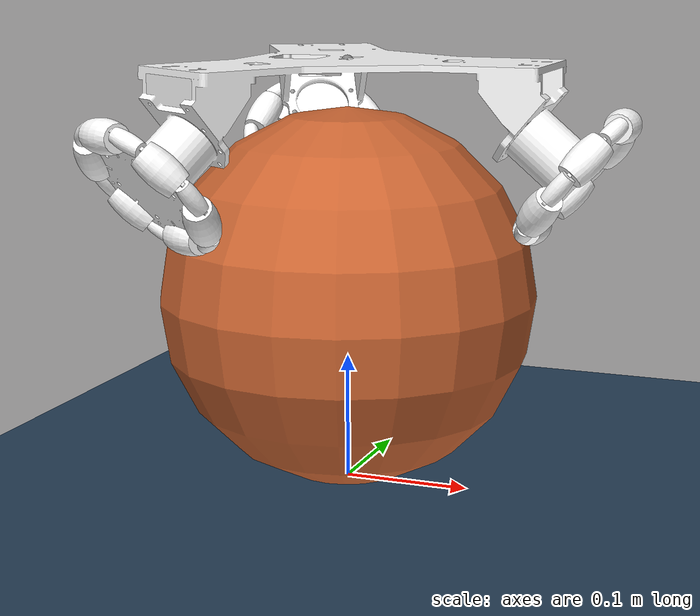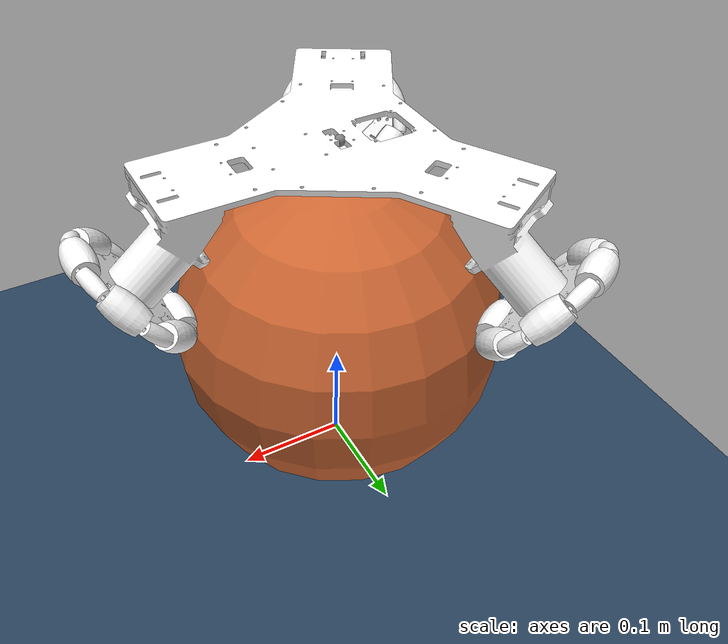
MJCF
<mujoco model="mjmodel scene">

  <!--引用机器人模型-->
  <include file="omni_ballbot.xml"/>
  <!--设置场景统计信息显示范围 中心位于(0,0,0.1)，半径 0.8 米-->
  <statistic center="0 0 0.1" extent="0.8"/>

  <!--视觉全局设置-->
  <visual>
    <headlight diffuse="0.6 0.6 0.6" ambient="0.3 0.3 0.3" specular="0 0 0"/>
    <rgba haze="0.15 0.25 0.35 1"/>
    <global azimuth="-130" elevation="-20"/>
  </visual>
  <!--天空盒纹理 地面纹理-->
  <asset>
    <texture type="skybox" builtin="gradient" rgb1="0.3 0.5 0.7" rgb2="0 0 0" width="512" height="3072"/>
    <texture type="2d" name="groundplane" builtin="checker" mark="edge" rgb1="0.2 0.3 0.4" rgb2="0.1 0.2 0.3"
      markrgb="0.8 0.8 0.8" width="300" height="300"/>
    <material name="groundplane" texture="groundplane" texuniform="true" texrepeat="5 5" reflectance="0.2"/>
  </asset>
  <!--地面平面和球-->
  <worldbody>
    <light pos="0 0 1.5" dir="0 0 -1" directional="true"/>
    <!--地面摩擦力在这-->
    <geom name="floor" size="0 0 0.05" type="plane" material="groundplane" friction="1.5 0.005 0.0001"/>
    <body name="balance_ball" pos="0 0 0.15">
      <freejoint name="ball_joint"/>
      <geom name="ball_geom" type="sphere" size="0.15" mass="1.2" rgba="0.8 0.4 0.2 1"
            friction="1.2 0.005 0.0001"
            solref="0.015 1" solimp="0.9 0.95 0.001 0.5 2"/>
    </body>
  </worldbody>
</mujoco>

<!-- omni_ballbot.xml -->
<mujoco model="omni_ballbot">
  <compiler angle="radian" meshdir="../meshes/"/>
  <!--cone决定了打滑时摩擦力的极限边界为椭圆形  impratio为接触阻抗比-->
  <option cone="elliptic" impratio="10"/>
<!--资产meshes-->
  <asset>
    <mesh name="base_link" file="base_link.STL"/>
    <mesh name="wheel_base" file="wheel_base.STL"/>
    <mesh name="wheel_link_A" file="wheel_link_A.STL"/>
    <mesh name="wheel_link_B" file="wheel_link_B.STL"/>
  </asset>
<!--执行器actuator-->
  <actuator>
    <motor name="wheel1" joint="wheel1_joint" ctrlrange="-2.5 2.5" gear="1"/>
    <motor name="wheel2" joint="wheel2_joint" ctrlrange="-2.5 2.5" gear="1"/>
    <motor name="wheel3" joint="wheel3_joint" ctrlrange="-2.5 2.5" gear="1"/>
  </actuator>
<!--辊子组别-->
  <!-- 物体A 和 物体B 发生碰撞的条件是：(注：& 是二进制按位与运算)
      A_contype & B_conaffinity > 0 就碰撞 或者 B_contype & A_conaffinity > 0
  -->
  <!-- 默认地面是 contype="1", conaffinity="1" -->
  <default>
    <default class="omni_roller">
      <!--type="mesh": 告诉引擎别用简单的球或圆柱，去读取你的 STL 文件算凸包，还原最真实的鼓形外轮廓-->
      <!--接触维度:3维算垂直弹力 + 沿面滑动的摩擦力；-->
      <!-- 0.8 (滑动摩擦): 沿着接触面切线的滑动阻力。0.8 是典型的软橡胶对金属/硬塑料的摩擦系数，提供极强的抓地力，让你的轮子能驱动球。
           0.05 (扭转摩擦): 绕着接触法线原地扭转的阻力。设小一点，是因为小辊子在球面上往往伴随着微小的原地自转滑动，太大容易卡死。
           0.0001 (滚动摩擦): 抵抗向前滚动的力。极其微小，模拟轴承的极致丝滑。 -->
      <!-- margin="0.001" (碰撞裕度): * 网格模型表面会有微小的“棱角”。这个参数会在你的 3D 模型外面“包”一层 1 毫米厚的隐形软垫。
        它能让引擎提前介入计算，把网格相撞时的尖锐脉冲力“柔化”，控制器读取到的力矩曲线会非常平滑。 -->
      <geom type="mesh" contype="2" conaffinity="1" condim="3" friction="0.8 0.05 0.0001" margin="0.001" solref="0.01 1" solimp="0.9 0.95 0.001 0.5 2"/>

      <!-- type="hinge": 所有的辊子只能绕自己的那根轴转。
           damping="0.001" (粘性阻尼): * 含义： 阻力与转速成正比（转得越快阻力越大）。模拟轴承里润滑油的粘滞力
           frictionloss="0.001" (干摩擦/静摩擦损失):启动阻力。你必须施加大于这个值的扭矩，辊子才会开始转。模拟金属部件之间的静摩擦。 -->
      <joint type="hinge" damping="0.001" frictionloss="0.001" armature="0.0001"/>
    </default>

    <default class="visual_geom">
      <geom type="mesh" contype="0" conaffinity="0" group="1" density="0"/>
    </default>
  </default>

  <!-- ===== 传感器 ===== -->
  <sensor>
    <!-- 姿态四元数 (IMU) -->
    <framequat name="base_orientation" objtype="site" objname="imu_site"/>
    <!-- 角速度 (陀螺仪) -->
    <frameangvel name="base_angvel" objtype="site" objname="imu_site"/>
    <!-- 线加速度 (加速度计) -->
    <accelerometer name="base_acc" site="imu_site"/>
    <!-- 线速度 -->
    <framelinvel name="base_linvel" objtype="site" objname="imu_site"/>
  </sensor>
  <worldbody>
    <!--让机器人活动-->
    <body name="base_link" pos="0 0 0.335">
    <freejoint name="base_joint"/>
    <inertial pos="0 0 0" mass="3.0" diaginertia="0.05 0.05 0.08"/>
    <geom type="mesh" contype="0" conaffinity="0" group="1" density="0" rgba="1 1 1 1" mesh="base_link"/>
    <geom type="cylinder" size="0.13 0.01" rgba="1 1 1 0" solref="0.04 1" solimp="0.9 0.95 0.001 0.5 2"/>
    <!-- IMU 传感器安装点 (base_link 质心) -->
    <site name="imu_site" pos="0 0 0"/>
    <!--轮子1-->
    <body name="wheel1_base" pos="0.18364 0 -0.081395" quat="0.939693 0 0.342019 0">
      <inertial pos="0 0 0" mass="1.0" diaginertia="1.0185e-05 5.1179e-06 5.1179e-06"/>
      <joint name="wheel1_joint" pos="0 0 0" axis="1 0 0"/>
        <geom type="mesh" mesh="wheel_base" rgba="1 1 1 1" class="visual_geom"/>
      <!--辊子-->
      <body name="wheel1_link_A1" pos="0 0 0.052" quat="0.707105 0 -0.707108 0">
        <inertial pos="0 0 0" quat="0.707107 0.707107 0 0" mass="0.04" diaginertia="2.0983e-06 2.0983e-06 1.2396e-06"/>
        <joint name="wheel1_joint_A1" pos="0 0 0" axis="0 1 0" class="omni_roller"/>
        <geom mesh="wheel_link_A" rgba="1 1 1 1" class="visual_geom"/>
        <geom mesh="wheel_link_A" class="omni_roller" rgba="1 1 1 0"/>
      </body>
      <!--辊子-->
      <body name="wheel1_link_A2" pos="0 -0.045033 0.026" quat="0.612371 0.353553 -0.612374 -0.353553">
        <inertial pos="0 0 0" quat="0.707107 0.707107 0 0" mass="0.04" diaginertia="2.09835e-06 2.09835e-06 1.23958e-06"/>
        <joint name="wheel1_joint_A2" pos="0 0 0" axis="0 1 0" class="omni_roller"/>
        <geom mesh="wheel_link_A" rgba="1 1 1 1" class="visual_geom"/>
        <geom mesh="wheel_link_A" class="omni_roller" rgba="1 1 1 0"/>
      </body>
      <!--辊子-->
      <body name="wheel1_link_A3" pos="0 -0.045033 -0.026" quat="0.353551 0.612373 -0.353555 -0.612373">
        <inertial pos="0 0 0" quat="0.707107 0.707107 0 0" mass="0.04" diaginertia="2.0983e-06 2.0983e-06 1.2396e-06"/>
        <joint name="wheel1_joint_A3" pos="0 0 0" axis="0 1 0" class="omni_roller"/>
        <geom mesh="wheel_link_A" rgba="1 1 1 1" class="visual_geom"/>
        <geom mesh="wheel_link_A" class="omni_roller" rgba="1 1 1 0"/>
      </body>
      <!--辊子-->
      <body name="wheel1_link_A4" pos="0 0 -0.052" quat="-2.59734e-06 0.707105 -2.59735e-06 -0.707108">
        <inertial pos="0 0 0" quat="0.707107 0.707107 0 0" mass="0.04" diaginertia="2.09835e-06 2.09835e-06 1.23958e-06"/>
        <joint name="wheel1_joint_A4" pos="0 0 0" axis="0 1 0" class="omni_roller"/>
        <geom mesh="wheel_link_A" rgba="1 1 1 1" class="visual_geom"/>
        <geom mesh="wheel_link_A" class="omni_roller" rgba="1 1 1 0"/>
      </body>
      <!--辊子-->
      <body name="wheel1_link_A5" pos="0 0.045033 -0.026" quat="0.353551 -0.612373 -0.353555 0.612373">
        <inertial pos="0 0 0" quat="0.707107 0.707107 0 0" mass="0.04" diaginertia="2.0983e-06 2.0983e-06 1.2396e-06"/>
        <joint name="wheel1_joint_A5" pos="0 0 0" axis="0 1 0" class="omni_roller"/>
        <geom mesh="wheel_link_A" rgba="1 1 1 1" class="visual_geom"/>
        <geom mesh="wheel_link_A" class="omni_roller" rgba="1 1 1 0"/>
      </body>
      <!--辊子-->
      <body name="wheel1_link_A6" pos="0 0.045033 0.026" quat="0.612371 -0.353553 -0.612374 0.353553">
        <inertial pos="0 0 0" quat="0.707107 0.707107 0 0" mass="0.04" diaginertia="2.0983e-06 2.0983e-06 1.2396e-06"/>
        <joint name="wheel1_joint_A6" pos="0 0 0" axis="0 1 0" class="omni_roller"/>
        <geom mesh="wheel_link_A" rgba="1 1 1 1" class="visual_geom"/>
        <geom mesh="wheel_link_A" class="omni_roller" rgba="1 1 1 0"/>
      </body>
      <!--辊子-->
      <body name="wheel1_link_B1" pos="0 -0.029 0.050229" quat="0.683012 0.183012 -0.683014 -0.183012">
        <inertial pos="0 -1.1743e-06 0" quat="0.707107 0.707107 0 0" mass="0.02" diaginertia="1.9241e-07 1.9241e-07 7.4977e-08"/>
        <joint name="wheel1_joint_B1" pos="0 0 0" axis="0 1 0" class="omni_roller"/>
        <geom mesh="wheel_link_B" rgba="1 1 1 1" class="visual_geom"/>
        <geom mesh="wheel_link_B" class="omni_roller" rgba="1 1 1 0"/>
      </body>
      <body name="wheel1_link_B2" pos="0 -0.058 0" quat="0.499998 0.5 -0.500002 -0.5">
        <inertial pos="0 -1.17428e-06 0" quat="0.707107 0.707107 0 0" mass="0.02" diaginertia="1.92408e-07 1.92408e-07 7.49769e-08"/>
        <joint name="wheel1_joint_B2" pos="0 0 0" axis="0 1 0" class="omni_roller"/>
        <geom mesh="wheel_link_B" rgba="1 1 1 1" class="visual_geom"/>
        <geom mesh="wheel_link_B" class="omni_roller" rgba="1 1 1 0"/>
      </body>
      <body name="wheel1_link_B3" pos="0 -0.029 -0.0502295" quat="0.183013 0.683013 -0.183013 -0.683013">
        <inertial pos="0 -1.1743e-06 0" quat="0.707107 0.707107 0 0" mass="0.02" diaginertia="1.9241e-07 1.9241e-07 7.4977e-08"/>
        <joint name="wheel1_joint_B3" pos="0 0 0" axis="0 1 0" class="omni_roller"/>
        <geom mesh="wheel_link_B" rgba="1 1 1 1" class="visual_geom"/>
        <geom mesh="wheel_link_B" class="omni_roller" rgba="1 1 1 0"/>
      </body>
      <body name="wheel1_link_B4" pos="0 0.029 -0.050229" quat="0.183009 -0.683013 -0.183014 0.683013">
        <inertial pos="0 -1.17428e-06 0" quat="0.707107 0.707107 0 0" mass="0.02" diaginertia="1.92408e-07 1.92408e-07 7.49769e-08"/>
        <joint name="wheel1_joint_B4" pos="0 0 0" axis="0 1 0" class="omni_roller"/>
        <geom mesh="wheel_link_B" rgba="1 1 1 1" class="visual_geom"/>
        <geom mesh="wheel_link_B" class="omni_roller" rgba="1 1 1 0"/>
      </body>
      <body name="wheel1_link_B5" pos="0 0.058 0" quat="0.499998 -0.5 -0.500002 0.5">
        <inertial pos="0 -1.17428e-06 0" quat="0.707107 0.707107 0 0" mass="0.02" diaginertia="1.92408e-07 1.92408e-07 7.49769e-08"/>
        <joint name="wheel1_joint_B5" pos="0 0 0" axis="0 1 0" class="omni_roller"/>
        <geom mesh="wheel_link_B" rgba="1 1 1 1" class="visual_geom"/>
        <geom mesh="wheel_link_B" class="omni_roller" rgba="1 1 1 0"/>
      </body>
      <body name="wheel1_link_B6" pos="0 0.029 0.050229" quat="0.683012 -0.183012 -0.683014 0.183012">
        <inertial pos="0 -1.1743e-06 0" quat="0.707107 0.707107 0 0" mass="0.02" diaginertia="1.9241e-07 1.9241e-07 7.4977e-08"/>
        <joint name="wheel1_joint_B6" pos="0 0 0" axis="0 1 0" class="omni_roller"/>
        <geom mesh="wheel_link_B" rgba="1 1 1 1" class="visual_geom"/>
        <geom mesh="wheel_link_B" class="omni_roller" rgba="1 1 1 0"/>
      </body>
    </body>

    <body name="wheel2_base" pos="-0.091819 0.15904 -0.081395" quat="0.469844 -0.296198 0.171009 0.813799">
      <inertial pos="0 0 0" mass="1.0" diaginertia="1.0185e-05 5.1179e-06 5.1179e-06"/>
      <joint name="wheel2_joint" pos="0 0 0" axis="1 0 0"/>
      <geom type="mesh" mesh="wheel_base" rgba="1 1 1 1" class="visual_geom"/>
      <body name="wheel2_link_A1" pos="0 0 0.052" quat="0.707105 0 -0.707108 0">
        <inertial pos="0 0 0" quat="0.707107 0.707107 0 0" mass="0.04" diaginertia="2.0983e-06 2.0983e-06 1.2396e-06"/>
        <joint name="wheel2_joint_A1" pos="0 0 0" axis="0 1 0" class="omni_roller"/>
        <geom mesh="wheel_link_A" rgba="1 1 1 1" class="visual_geom"/>
        <geom mesh="wheel_link_A" class="omni_roller" rgba="1 1 1 0"/>
      </body>
      <body name="wheel2_link_A2" pos="0 -0.045033 0.026" quat="0.612371 0.353553 -0.612374 -0.353553">
        <inertial pos="0 0 0" quat="0.707107 0.707107 0 0" mass="0.04" diaginertia="2.09835e-06 2.09835e-06 1.23958e-06"/>
        <joint name="wheel2_joint_A2" pos="0 0 0" axis="0 1 0" class="omni_roller"/>
        <geom mesh="wheel_link_A" rgba="1 1 1 1" class="visual_geom"/>
        <geom mesh="wheel_link_A" class="omni_roller" rgba="1 1 1 0"/>
      </body>
      <body name="wheel2_link_A3" pos="0 -0.045033 -0.026" quat="0.353551 0.612373 -0.353555 -0.612373">
        <inertial pos="0 0 0" quat="0.707107 0.707107 0 0" mass="0.04" diaginertia="2.0983e-06 2.0983e-06 1.2396e-06"/>
        <joint name="wheel2_joint_A3" pos="0 0 0" axis="0 1 0" class="omni_roller"/>
        <geom mesh="wheel_link_A" rgba="1 1 1 1" class="visual_geom"/>
        <geom mesh="wheel_link_A" class="omni_roller" rgba="1 1 1 0"/>
      </body>
      <body name="wheel2_link_A4" pos="0 0 -0.052" quat="-2.59734e-06 0.707105 -2.59735e-06 -0.707108">
        <inertial pos="0 0 0" quat="0.707107 0.707107 0 0" mass="0.04" diaginertia="2.09835e-06 2.09835e-06 1.23958e-06"/>
        <joint name="wheel2_joint_A4" pos="0 0 0" axis="0 1 0" class="omni_roller"/>
        <geom mesh="wheel_link_A" rgba="1 1 1 1" class="visual_geom"/>
        <geom mesh="wheel_link_A" class="omni_roller" rgba="1 1 1 0"/>
      </body>
      <body name="wheel2_link_A5" pos="0 0.045033 -0.026" quat="0.353551 -0.612373 -0.353555 0.612373">
        <inertial pos="0 0 0" quat="0.707107 0.707107 0 0" mass="0.04" diaginertia="2.0983e-06 2.0983e-06 1.2396e-06"/>
        <joint name="wheel2_joint_A5" pos="0 0 0" axis="0 1 0" class="omni_roller"/>
        <geom mesh="wheel_link_A" rgba="1 1 1 1" class="visual_geom"/>
        <geom mesh="wheel_link_A" class="omni_roller" rgba="1 1 1 0"/>
      </body>
      <body name="wheel2_link_A6" pos="0 0.045033 0.026" quat="0.612371 -0.353553 -0.612374 0.353553">
        <inertial pos="0 0 0" quat="0.707107 0.707107 0 0" mass="0.04" diaginertia="2.0983e-06 2.0983e-06 1.2396e-06"/>
        <joint name="wheel2_joint_A6" pos="0 0 0" axis="0 1 0" class="omni_roller"/>
        <geom mesh="wheel_link_A" rgba="1 1 1 1" class="visual_geom"/>
        <geom mesh="wheel_link_A" class="omni_roller" rgba="1 1 1 0"/>
      </body>
      <body name="wheel2_link_B1" pos="0 -0.029 0.050229" quat="0.683012 0.183012 -0.683014 -0.183012">
        <inertial pos="0 -1.1743e-06 0" quat="0.707107 0.707107 0 0" mass="0.02" diaginertia="1.9241e-07 1.9241e-07 7.4977e-08"/>
        <joint name="wheel2_joint_B1" pos="0 0 0" axis="0 1 0" class="omni_roller"/>
        <geom mesh="wheel_link_B" rgba="1 1 1 1" class="visual_geom"/>
        <geom mesh="wheel_link_B" class="omni_roller" rgba="1 1 1 0"/>
      </body>
      <body name="wheel2_link_B2" pos="0 -0.058 0" quat="0.499998 0.5 -0.500002 -0.5">
        <inertial pos="0 -1.17428e-06 0" quat="0.707107 0.707107 0 0" mass="0.02" diaginertia="1.92408e-07 1.92408e-07 7.49769e-08"/>
        <joint name="wheel2_joint_B2" pos="0 0 0" axis="0 1 0" class="omni_roller"/>
        <geom mesh="wheel_link_B" rgba="1 1 1 1" class="visual_geom"/>
        <geom mesh="wheel_link_B" class="omni_roller" rgba="1 1 1 0"/>
      </body>
      <body name="wheel2_link_B3" pos="0 -0.029 -0.0502295" quat="0.183013 0.683013 -0.183013 -0.683013">
        <inertial pos="0 -1.1743e-06 0" quat="0.707107 0.707107 0 0" mass="0.02" diaginertia="1.9241e-07 1.9241e-07 7.4977e-08"/>
        <joint name="wheel2_joint_B3" pos="0 0 0" axis="0 1 0" class="omni_roller"/>
        <geom mesh="wheel_link_B" rgba="1 1 1 1" class="visual_geom"/>
        <geom mesh="wheel_link_B" class="omni_roller" rgba="1 1 1 0"/>
      </body>
      <body name="wheel2_link_B4" pos="0 0.029 -0.050229" quat="0.183009 -0.683013 -0.183014 0.683013">
        <inertial pos="0 -1.17428e-06 0" quat="0.707107 0.707107 0 0" mass="0.02" diaginertia="1.92408e-07 1.92408e-07 7.49769e-08"/>
        <joint name="wheel2_joint_B4" pos="0 0 0" axis="0 1 0" class="omni_roller"/>
        <geom mesh="wheel_link_B" rgba="1 1 1 1" class="visual_geom"/>
        <geom mesh="wheel_link_B" class="omni_roller" rgba="1 1 1 0"/>
      </body>
      <body name="wheel2_link_B5" pos="0 0.058 0" quat="0.499998 -0.5 -0.500002 0.5">
        <inertial pos="0 -1.17428e-06 0" quat="0.707107 0.707107 0 0" mass="0.02" diaginertia="1.92408e-07 1.92408e-07 7.49769e-08"/>
        <joint name="wheel2_joint_B5" pos="0 0 0" axis="0 1 0" class="omni_roller"/>
        <geom mesh="wheel_link_B" rgba="1 1 1 1" class="visual_geom"/>
        <geom mesh="wheel_link_B" class="omni_roller" rgba="1 1 1 0"/>
      </body>
      <body name="wheel2_link_B6" pos="0 0.029 0.050229" quat="0.683012 -0.183012 -0.683014 0.183012">
        <inertial pos="0 -1.1743e-06 0" quat="0.707107 0.707107 0 0" mass="0.02" diaginertia="1.9241e-07 1.9241e-07 7.4977e-08"/>
        <joint name="wheel2_joint_B6" pos="0 0 0" axis="0 1 0" class="omni_roller"/>
        <geom mesh="wheel_link_B" rgba="1 1 1 1" class="visual_geom"/>
        <geom mesh="wheel_link_B" class="omni_roller" rgba="1 1 1 0"/>
      </body>
    </body>

    <body name="wheel3_base" pos="-0.091819 -0.15904 -0.081395" quat="0.469844 0.296198 0.171009 -0.813799">
      <inertial pos="0 0 0" mass="1.0" diaginertia="1.0185e-05 5.1179e-06 5.1179e-06"/>
      <joint name="wheel3_joint" pos="0 0 0" axis="1 0 0"/>
      <geom type="mesh" mesh="wheel_base" rgba="1 1 1 1" class="visual_geom"/>
      <body name="wheel3_link_A1" pos="0 0 0.052" quat="0.707105 0 -0.707108 0">
        <inertial pos="0 0 0" quat="0.707107 0.707107 0 0" mass="0.04" diaginertia="2.0983e-06 2.0983e-06 1.2396e-06"/>
        <joint name="wheel3_joint_A1" pos="0 0 0" axis="0 1 0" class="omni_roller"/>
        <geom mesh="wheel_link_A" rgba="1 1 1 1" class="visual_geom"/>
        <geom mesh="wheel_link_A" class="omni_roller" rgba="1 1 1 0"/>
      </body>
      <body name="wheel3_link_A2" pos="0 -0.045033 0.026" quat="0.612371 0.353553 -0.612374 -0.353553">
        <inertial pos="0 0 0" quat="0.707107 0.707107 0 0" mass="0.04" diaginertia="2.09835e-06 2.09835e-06 1.23958e-06"/>
        <joint name="wheel3_joint_A2" pos="0 0 0" axis="0 1 0" class="omni_roller"/>
        <geom mesh="wheel_link_A" rgba="1 1 1 1" class="visual_geom"/>
        <geom mesh="wheel_link_A" class="omni_roller" rgba="1 1 1 0"/>
      </body>
      <body name="wheel3_link_A3" pos="0 -0.045033 -0.026" quat="0.353551 0.612373 -0.353555 -0.612373">
        <inertial pos="0 0 0" quat="0.707107 0.707107 0 0" mass="0.04" diaginertia="2.0983e-06 2.0983e-06 1.2396e-06"/>
        <joint name="wheel3_joint_A3" pos="0 0 0" axis="0 1 0" class="omni_roller"/>
        <geom mesh="wheel_link_A" rgba="1 1 1 1" class="visual_geom"/>
        <geom mesh="wheel_link_A" class="omni_roller" rgba="1 1 1 0"/>
      </body>
      <body name="wheel3_link_A4" pos="0 0 -0.052" quat="-2.59734e-06 0.707105 -2.59735e-06 -0.707108">
        <inertial pos="0 0 0" quat="0.707107 0.707107 0 0" mass="0.04" diaginertia="2.09835e-06 2.09835e-06 1.23958e-06"/>
        <joint name="wheel3_joint_A4" pos="0 0 0" axis="0 1 0" class="omni_roller"/>
        <geom mesh="wheel_link_A" rgba="1 1 1 1" class="visual_geom"/>
        <geom mesh="wheel_link_A" class="omni_roller" rgba="1 1 1 0"/>
      </body>
      <body name="wheel3_link_A5" pos="0 0.045033 -0.026" quat="0.353551 -0.612373 -0.353555 0.612373">
        <inertial pos="0 0 0" quat="0.707107 0.707107 0 0" mass="0.04" diaginertia="2.0983e-06 2.0983e-06 1.2396e-06"/>
        <joint name="wheel3_joint_A5" pos="0 0 0" axis="0 1 0" class="omni_roller"/>
        <geom mesh="wheel_link_A" rgba="1 1 1 1" class="visual_geom"/>
        <geom mesh="wheel_link_A" class="omni_roller" rgba="1 1 1 0"/>
      </body>
      <body name="wheel3_link_A6" pos="0 0.045033 0.026" quat="0.612371 -0.353553 -0.612374 0.353553">
        <inertial pos="0 0 0" quat="0.707107 0.707107 0 0" mass="0.04" diaginertia="2.0983e-06 2.0983e-06 1.2396e-06"/>
        <joint name="wheel3_joint_A6" pos="0 0 0" axis="0 1 0" class="omni_roller"/>
        <geom mesh="wheel_link_A" rgba="1 1 1 1" class="visual_geom"/>
        <geom mesh="wheel_link_A" class="omni_roller" rgba="1 1 1 0"/>
      </body>
      <body name="wheel3_link_B1" pos="0 -0.029 0.050229" quat="0.683012 0.183012 -0.683014 -0.183012">
        <inertial pos="0 -1.1743e-06 0" quat="0.707107 0.707107 0 0" mass="0.02" diaginertia="1.9241e-07 1.9241e-07 7.4977e-08"/>
        <joint name="wheel3_joint_B1" pos="0 0 0" axis="0 1 0" class="omni_roller"/>
        <geom mesh="wheel_link_B" rgba="1 1 1 1" class="visual_geom"/>
        <geom mesh="wheel_link_B" class="omni_roller" rgba="1 1 1 0"/>
      </body>
      <body name="wheel3_link_B2" pos="0 -0.058 0" quat="0.499998 0.5 -0.500002 -0.5">
        <inertial pos="0 -1.17428e-06 0" quat="0.707107 0.707107 0 0" mass="0.02" diaginertia="1.92408e-07 1.92408e-07 7.49769e-08"/>
        <joint name="wheel3_joint_B2" pos="0 0 0" axis="0 1 0" class="omni_roller"/>
        <geom mesh="wheel_link_B" rgba="1 1 1 1" class="visual_geom"/>
        <geom mesh="wheel_link_B" class="omni_roller" rgba="1 1 1 0"/>
      </body>
      <body name="wheel3_link_B3" pos="0 -0.029 -0.0502295" quat="0.183013 0.683013 -0.183013 -0.683013">
        <inertial pos="0 -1.1743e-06 0" quat="0.707107 0.707107 0 0" mass="0.02" diaginertia="1.9241e-07 1.9241e-07 7.4977e-08"/>
        <joint name="wheel3_joint_B3" pos="0 0 0" axis="0 1 0" class="omni_roller"/>
        <geom mesh="wheel_link_B" rgba="1 1 1 1" class="visual_geom"/>
        <geom mesh="wheel_link_B" class="omni_roller" rgba="1 1 1 0"/>
      </body>
      <body name="wheel3_link_B4" pos="0 0.029 -0.050229" quat="0.183009 -0.683013 -0.183014 0.683013">
        <inertial pos="0 -1.17428e-06 0" quat="0.707107 0.707107 0 0" mass="0.02" diaginertia="1.92408e-07 1.92408e-07 7.49769e-08"/>
        <joint name="wheel3_joint_B4" pos="0 0 0" axis="0 1 0" class="omni_roller"/>
        <geom mesh="wheel_link_B" rgba="1 1 1 1" class="visual_geom"/>
        <geom mesh="wheel_link_B" class="omni_roller" rgba="1 1 1 0"/>
      </body>
      <body name="wheel3_link_B5" pos="0 0.058 0" quat="0.499998 -0.5 -0.500002 0.5">
        <inertial pos="0 -1.17428e-06 0" quat="0.707107 0.707107 0 0" mass="0.02" diaginertia="1.92408e-07 1.92408e-07 7.49769e-08"/>
        <joint name="wheel3_joint_B5" pos="0 0 0" axis="0 1 0" class="omni_roller"/>
        <geom mesh="wheel_link_B" rgba="1 1 1 1" class="visual_geom"/>
        <geom mesh="wheel_link_B" class="omni_roller" rgba="1 1 1 0"/>
      </body>
      <body name="wheel3_link_B6" pos="0 0.029 0.050229" quat="0.683012 -0.183012 -0.683014 0.183012">
        <inertial pos="0 -1.1743e-06 0" quat="0.707107 0.707107 0 0" mass="0.02" diaginertia="1.9241e-07 1.9241e-07 7.4977e-08"/>
        <joint name="wheel3_joint_B6" pos="0 0 0" axis="0 1 0" class="omni_roller"/>
        <geom mesh="wheel_link_B" rgba="1 1 1 1" class="visual_geom"/>
        <geom mesh="wheel_link_B" class="omni_roller" rgba="1 1 1 0"/>
      </body>
    </body>

    </body>
  </worldbody>
</mujoco>
